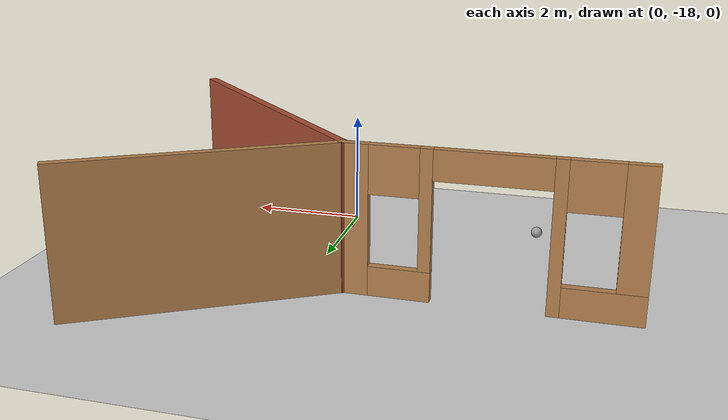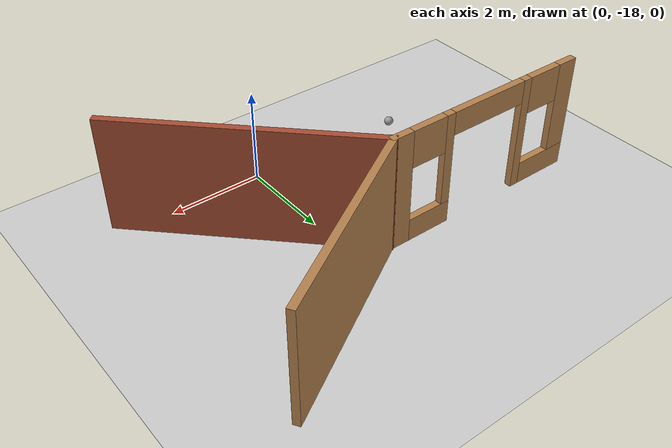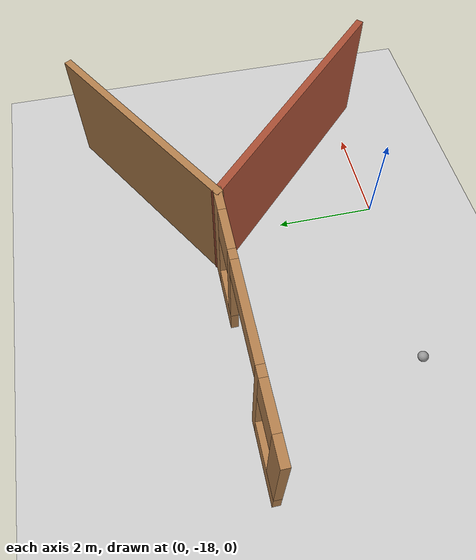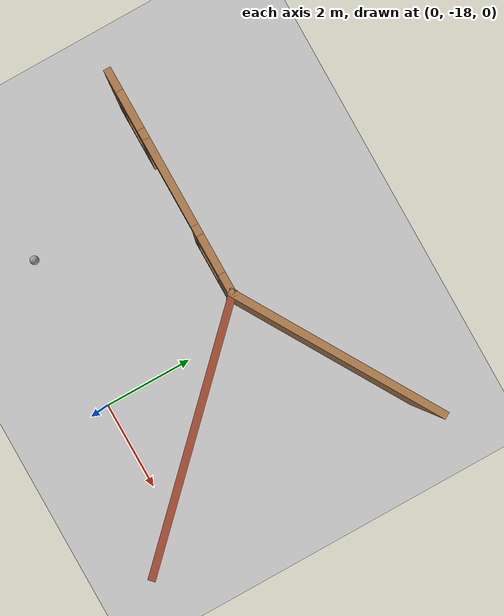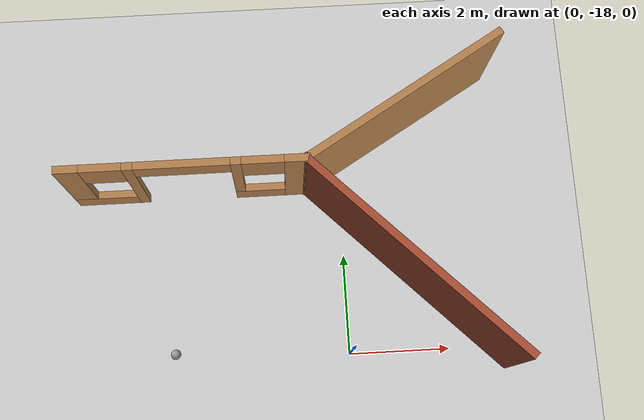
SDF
<sdf version="1.6">
 <world name="default">
  <model name="ground_plane">
   <static>1</static>
   <link name="link">
    <collision name="collision">
     <geometry><plane><normal>0 0 1</normal><size>100 100</size></plane></geometry>
     <surface><friction><ode><mu>100</mu><mu2>50</mu2></ode></friction></surface>
    </collision>
    <visual name="visual">
     <cast_shadows>0</cast_shadows>
     <geometry><plane><normal>0 0 1</normal><size>100 100</size></plane></geometry>
     <material>
      <script><uri>file://media/materials/scripts/gazebo.material</uri><name>Gazebo/Grey</name></script>
     </material>
    </visual>
   </link>
  </model>
  <model name="spiral_office">
   <link name="Wall_103">
    <collision name="Wall_103_Collision">
     <geometry><box><size>4.56386 0.15 2.5</size></box></geometry>
     <pose>0 0 1.25 0 -0 0</pose>
    </collision>
    <visual name="Wall_103_Visual">
     <pose>0 0 1.25 0 -0 0</pose>
     <geometry><box><size>4.56386 0.15 2.5</size></box></geometry>
     <material>
      <script><uri>file://media/materials/scripts/gazebo.material</uri><name>Gazebo/Wood</name></script>
      <ambient>1 1 1 1</ambient>
     </material>
     <meta><layer>0</layer></meta>
    </visual>
    <pose>1.17619 -13.4264 0 0 0 -2.60036</pose>
   </link>
   <link name="Wall_21">
    <collision name="Wall_21_Collision">
     <geometry><box><size>5.5 0.15 2.5</size></box></geometry>
     <pose>0 0 1.25 0 -0 0</pose>
    </collision>
    <visual name="Wall_21_Visual">
     <pose>0 0 1.25 0 -0 0</pose>
     <geometry><box><size>5.5 0.15 2.5</size></box></geometry>
     <material>
      <script><uri>file://media/materials/scripts/gazebo.material</uri><name>Gazebo/Bricks</name></script>
      <ambient>1 1 1 1</ambient>
     </material>
     <meta><layer>0</layer></meta>
    </visual>
    <pose>1.17619 -16.4549 0 0 -0 2.35619</pose>
   </link>
   <link name="Wall_22">
    <pose>-3.0151 -14.5635 0 0 0 -3.14155</pose>
    <visual name="Wall_22_Visual_0">
     <pose>-2.1319 0 1.25 0 -0 0</pose>
     <geometry><box><size>0.486208 0.15 2.5</size></box></geometry>
     <material>
      <script><uri>file://media/materials/scripts/gazebo.material</uri><name>Gazebo/Wood</name></script>
      <ambient>1 1 1 1</ambient>
     </material>
     <meta><layer>0</layer></meta>
    </visual>
    <collision name="Wall_22_Collision_0">
     <geometry><box><size>0.486208 0.15 2.5</size></box></geometry>
     <pose>-2.1319 0 1.25 0 -0 0</pose>
    </collision>
    <visual name="Wall_22_Visual_1">
     <pose>1.01121 0 1.25 0 -0 0</pose>
     <geometry><box><size>0.2 0.15 2.5</size></box></geometry>
     <material>
      <script><uri>file://media/materials/scripts/gazebo.material</uri><name>Gazebo/Wood</name></script>
      <ambient>1 1 1 1</ambient>
     </material>
     <meta><layer>0</layer></meta>
    </visual>
    <collision name="Wall_22_Collision_1">
     <geometry><box><size>0.2 0.15 2.5</size></box></geometry>
     <pose>1.01121 0 1.25 0 -0 0</pose>
    </collision>
    <visual name="Wall_22_Visual_2">
     <pose>-1.38879 0 0.25 0 -0 0</pose>
     <geometry><box><size>1 0.15 0.5</size></box></geometry>
     <material>
      <script><uri>file://media/materials/scripts/gazebo.material</uri><name>Gazebo/Wood</name></script>
      <ambient>1 1 1 1</ambient>
     </material>
     <meta><layer>0</layer></meta>
    </visual>
    <collision name="Wall_22_Collision_2">
     <geometry><box><size>1 0.15 0.5</size></box></geometry>
     <pose>-1.38879 0 0.25 0 -0 0</pose>
    </collision>
    <visual name="Wall_22_Visual_3">
     <pose>1.7431 0 0.25 0 -0 0</pose>
     <geometry><box><size>1.26379 0.15 0.5</size></box></geometry>
     <material>
      <script><uri>file://media/materials/scripts/gazebo.material</uri><name>Gazebo/Wood</name></script>
      <ambient>1 1 1 1</ambient>
     </material>
     <meta><layer>0</layer></meta>
    </visual>
    <collision name="Wall_22_Collision_3">
     <geometry><box><size>1.26379 0.15 0.5</size></box></geometry>
     <pose>1.7431 0 0.25 0 -0 0</pose>
    </collision>
    <visual name="Wall_22_Visual_4">
     <pose>-0.988792 0 1.5 0 -0 0</pose>
     <geometry><box><size>0.2 0.15 2</size></box></geometry>
     <material>
      <script><uri>file://media/materials/scripts/gazebo.material</uri><name>Gazebo/Wood</name></script>
      <ambient>1 1 1 1</ambient>
     </material>
     <meta><layer>0</layer></meta>
    </visual>
    <collision name="Wall_22_Collision_4">
     <geometry><box><size>0.2 0.15 2</size></box></geometry>
     <pose>-0.988792 0 1.5 0 -0 0</pose>
    </collision>
    <visual name="Wall_22_Visual_5">
     <pose>-0.988792 0 1.5 0 -0 0</pose>
     <geometry><box><size>0.2 0.15 2</size></box></geometry>
     <material>
      <script><uri>file://media/materials/scripts/gazebo.material</uri><name>Gazebo/Wood</name></script>
      <ambient>1 1 1 1</ambient>
     </material>
     <meta><layer>0</layer></meta>
    </visual>
    <collision name="Wall_22_Collision_5">
     <geometry><box><size>0.2 0.15 2</size></box></geometry>
     <pose>-0.988792 0 1.5 0 -0 0</pose>
    </collision>
    <visual name="Wall_22_Visual_6">
     <pose>2.1431 0 1.5 0 -0 0</pose>
     <geometry><box><size>0.463792 0.15 2</size></box></geometry>
     <material>
      <script><uri>file://media/materials/scripts/gazebo.material</uri><name>Gazebo/Wood</name></script>
      <ambient>1 1 1 1</ambient>
     </material>
     <meta><layer>0</layer></meta>
    </visual>
    <collision name="Wall_22_Collision_6">
     <geometry><box><size>0.463792 0.15 2</size></box></geometry>
     <pose>2.1431 0 1.5 0 -0 0</pose>
    </collision>
    <visual name="Wall_22_Visual_7">
     <pose>-1.48879 0 2.1 0 -0 0</pose>
     <geometry><box><size>0.8 0.15 0.8</size></box></geometry>
     <material>
      <script><uri>file://media/materials/scripts/gazebo.material</uri><name>Gazebo/Wood</name></script>
      <ambient>1 1 1 1</ambient>
     </material>
     <meta><layer>0</layer></meta>
    </visual>
    <collision name="Wall_22_Collision_7">
     <geometry><box><size>0.8 0.15 0.8</size></box></geometry>
     <pose>-1.48879 0 2.1 0 -0 0</pose>
    </collision>
    <visual name="Wall_22_Visual_8">
     <pose>1.51121 0 2.1 0 -0 0</pose>
     <geometry><box><size>0.8 0.15 0.8</size></box></geometry>
     <material>
      <script><uri>file://media/materials/scripts/gazebo.material</uri><name>Gazebo/Wood</name></script>
      <ambient>1 1 1 1</ambient>
     </material>
     <meta><layer>0</layer></meta>
    </visual>
    <collision name="Wall_22_Collision_8">
     <geometry><box><size>0.8 0.15 0.8</size></box></geometry>
     <pose>1.51121 0 2.1 0 -0 0</pose>
    </collision>
    <visual name="Wall_22_Visual_9">
     <pose>0.011208 0 2.25 0 -0 0</pose>
     <geometry><box><size>1.8 0.15 0.5</size></box></geometry>
     <material>
      <script><uri>file://media/materials/scripts/gazebo.material</uri><name>Gazebo/Wood</name></script>
      <ambient>1 1 1 1</ambient>
     </material>
     <meta><layer>0</layer></meta>
    </visual>
    <collision name="Wall_22_Collision_9">
     <geometry><box><size>1.8 0.15 0.5</size></box></geometry>
     <pose>0.011208 0 2.25 0 -0 0</pose>
    </collision>
    <visual name="Wall_22_Visual_10">
     <pose>0.011208 0 2.25 0 -0 0</pose>
     <geometry><box><size>1.8 0.15 0.5</size></box></geometry>
     <material>
      <script><uri>file://media/materials/scripts/gazebo.material</uri><name>Gazebo/Wood</name></script>
      <ambient>1 1 1 1</ambient>
     </material>
     <meta><layer>0</layer></meta>
    </visual>
    <collision name="Wall_22_Collision_10">
     <geometry><box><size>1.8 0.15 0.5</size></box></geometry>
     <pose>0.011208 0 2.25 0 -0 0</pose>
    </collision>
   </link>
   <static>1</static>
  </model>
  <model name="my_ball">
   <link name="link_0">
    <inertial>
     <mass>1</mass>
     <inertia><ixx>0.1</ixx><ixy>0</ixy><ixz>0</ixz><iyy>0.1</iyy><iyz>0</iyz><izz>0.1</izz></inertia>
    </inertial>
    <visual name="visual">
     <geometry><sphere><radius>0.1</radius></sphere></geometry>
     <material>
      <lighting>1</lighting>
      <script><uri>file://media/materials/scripts/gazebo.material</uri><name>Gazebo/Grey</name></script>
      <shader type="pixel"><normal_map>__default__</normal_map></shader>
      <ambient>1 1 1 1</ambient>
      <diffuse>1 1 1 1</diffuse>
      <specular>1 1 1 1</specular>
      <emissive>1 1 1 1</emissive>
     </material>
    </visual>
    <collision name="collision">
     <geometry><sphere><radius>0.1</radius></sphere></geometry>
     <surface>
      <friction>
       <ode><mu>1</mu><mu2>1</mu2><fdir1>0 0 0</fdir1><slip1>0</slip1><slip2>0</slip2></ode>
       <torsional>
        <coefficient>1</coefficient>
        <patch_radius>0</patch_radius>
        <surface_radius>0</surface_radius>
        <use_patch_radius>1</use_patch_radius>
        <ode><slip>0</slip></ode>
       </torsional>
      </friction>
      <bounce><restitution_coefficient>0</restitution_coefficient><threshold>1e+06</threshold></bounce>
      <contact>
       <collide_without_contact>0</collide_without_contact>
       <collide_without_contact_bitmask>1</collide_without_contact_bitmask>
       <collide_bitmask>1</collide_bitmask>
       <ode>
        <soft_cfm>0</soft_cfm>
        <soft_erp>0.2</soft_erp>
        <kp>1e+13</kp>
        <kd>1</kd>
        <max_vel>0.01</max_vel>
        <min_depth>0</min_depth>
       </ode>
       <bullet>
        <split_impulse>1</split_impulse>
        <split_impulse_penetration_threshold>-0.01</split_impulse_penetration_threshold>
        <soft_cfm>0</soft_cfm>
        <soft_erp>0.2</soft_erp>
        <kp>1e+13</kp>
        <kd>1</kd>
       </bullet>
      </contact>
     </surface>
    </collision>
   </link>
   <static>0</static>
   <pose>-3.4797 -17.8342 0.1 0 -0 0</pose>
  </model>
 </world>
</sdf>
